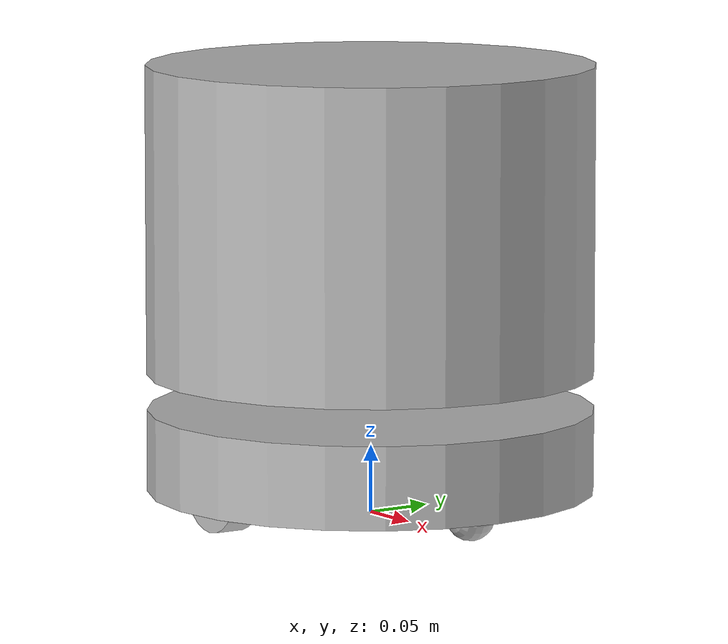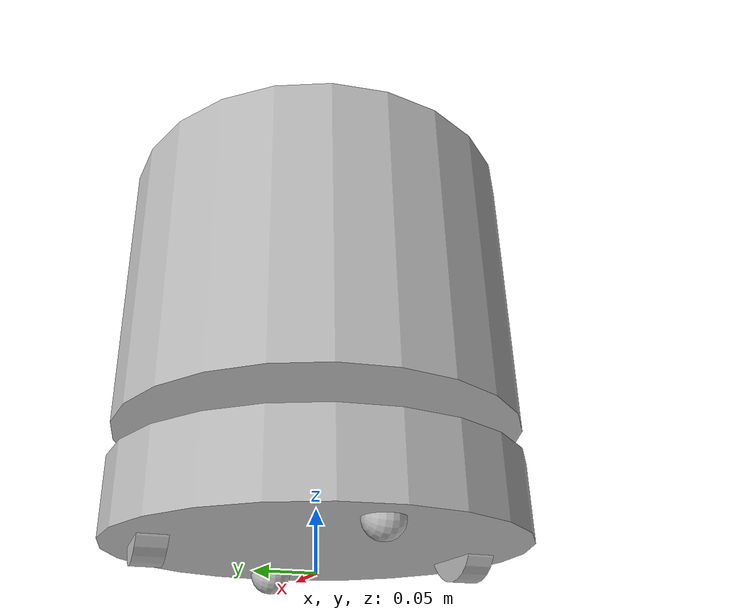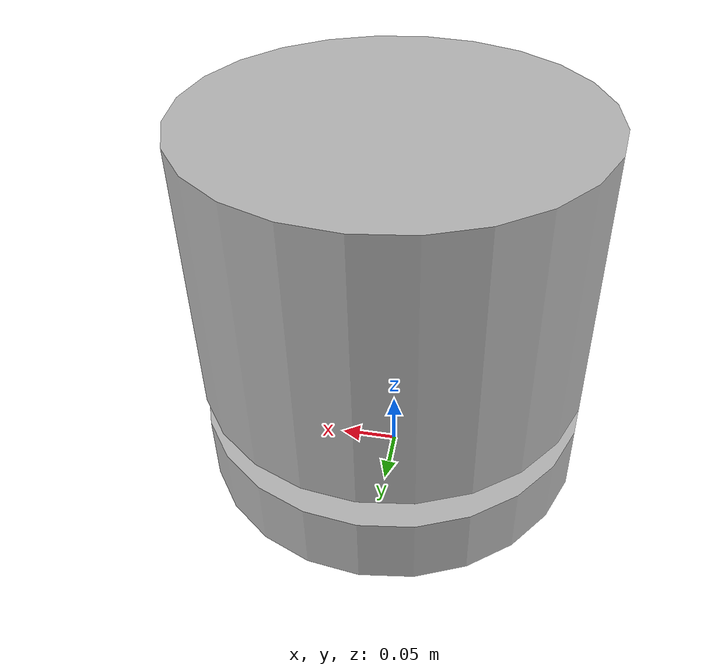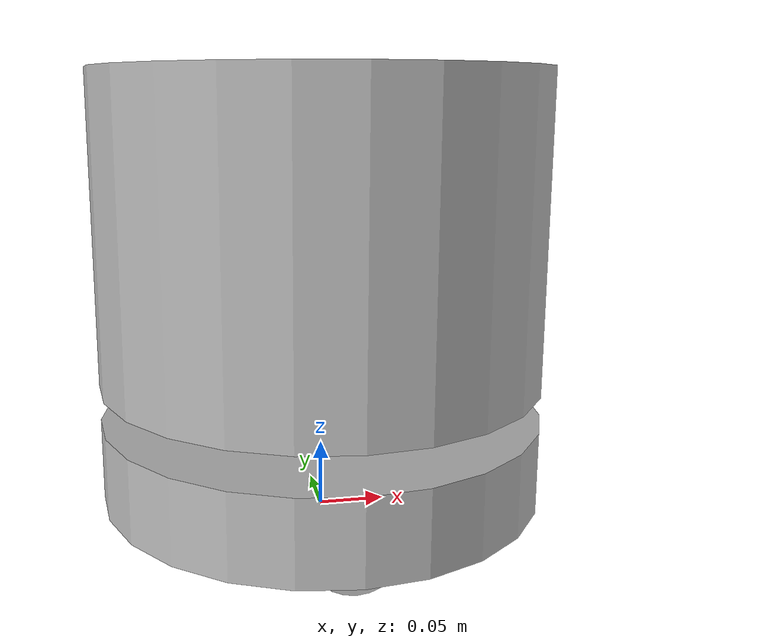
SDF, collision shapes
<?xml version="1.0" ?>
<sdf version="1.4">
  <model name="iRobotCreate">
    <link name="base_link">
      <inertial>
        <pose>0.001453 -0.000453 0.029787 0 0 0</pose>
        <inertia>
          <ixx>0.058640</ixx>
          <ixy>0.000124</ixy>
          <ixz>0.000615</ixz>
          <iyy>0.058786</iyy>
          <iyz>0.000014</iyz>
          <izz>1.532440</izz>
        </inertia>
        <mass>2.234000</mass>
      </inertial>

      <collision name="base_link_collision">
        <pose>0 0 0.047800 0 0 0</pose>
        <geometry>
          <cylinder>
            <radius>0.166495</radius>
            <length>0.061163</length>
          </cylinder>
        </geometry>
      </collision>
      <visual name="base_link_visual">
        <pose>0 0 0.047800 0 0 0</pose>
        <geometry>
          <mesh>
            <uri>model://irobot/meshes/create_body.dae</uri>
          </mesh>
        </geometry>
      </visual>

      <!-->Beer Can<-->
      <collision name='beer_can_collision'>
        <pose>0 0 0.22 0 -0 0</pose>
        <geometry>
          <cylinder>
            <radius>0.166495</radius>
            <length>0.230000</length>
          </cylinder>
        </geometry>
      </collision>
      <visual name='beer_can_visual'>
        <pose>0 0 0.22 0 -0 0</pose>
        <geometry>
          <cylinder>
            <radius>0.166495</radius>
            <length>0.230000</length>
          </cylinder>
        </geometry>
        <material>
          <script>
            <uri>model://beer/materials/scripts</uri>
            <uri>model://beer/materials/textures</uri>
            <name>Beer/Diffuse</name>
          </script>
        </material>
      </visual>

      <collision name="front_wheel_collision">
        <pose>0.130000 0 0.017000 0 1.570700 1.570700</pose>
        <geometry>
          <sphere>
            <radius>0.018000</radius>
          </sphere>
        </geometry>
        <surface>
          <friction>
            <ode>
              <mu>0</mu>
              <mu2>0</mu2>
              <fdir1>0 0 0</fdir1>
              <slip1>0</slip1>
              <slip2>0</slip2>
            </ode>
          </friction>
        </surface>
      </collision>
      <visual name="front_wheel_visual">
        <pose>0.130000 0 0.017000 0 1.570700 1.570700</pose>
        <geometry>
          <sphere>
            <radius>0.009000</radius>
          </sphere>
        </geometry>
      </visual>

      <collision name="rear_wheel_collision">
        <pose>-0.13 0 0.017 0 1.5707 1.5707</pose>
        <geometry>
          <sphere>
            <radius>0.015000</radius>
          </sphere>
        </geometry>
        <surface>
          <friction>
            <ode>
              <mu>0</mu>
              <mu2>0</mu2>
              <fdir1>0 0 0</fdir1>
              <slip1>0</slip1>
              <slip2>0</slip2>
            </ode>
          </friction>
        </surface>
      </collision>
      <visual name="rear_wheel_visual">
        <pose>-0.130000 0 0.017000 0 1.570700 1.570700</pose>
        <geometry>
          <sphere>
            <radius>0.007500</radius>
          </sphere>
        </geometry>
      </visual>

      <!-->hokuyo collision<-->
      <collision name='base_link_collision_hokuyo_laser_link'>
        <pose>0 0 0.28 0 -0 0</pose>
        <geometry>
          <cylinder>
            <length>0.04</length>
            <radius>0.045</radius>
          </cylinder>
        </geometry>
        <surface>
          <contact>
            <ode/>
          </contact>
          <friction>
            <ode/>
          </friction>
        </surface>
      </collision>
      <visual name='base_link_visual_hokuyo_laser_link'>
        <pose>0 0 0.28 0 -0 0</pose>
        <geometry>
          <cylinder>
            <length>0.04</length>
            <radius>0.045</radius>
          </cylinder>
        </geometry>
      </visual>
      <sensor name='head_hokuyo_sensor' type='ray'>
        <visualize>0</visualize>
        <update_rate>40</update_rate>
        <ray>
          <scan>
            <horizontal>
              <samples>360</samples>
              <resolution>1</resolution>
              <min_angle>-3.14159</min_angle>
              <max_angle>3.14159</max_angle>
            </horizontal>
          </scan>
          <range>
            <min>0.166695</min>
            <max>10</max>
            <resolution>0.025</resolution>
          </range>
          <noise>
            <type>gaussian</type>
            <mean>0</mean>
            <stddev>0</stddev>
          </noise>
        </ray>
        <plugin name='gazebo_ros_head_hokuyo_controller' filename='libgazebo_ros_laser.so'>
          <robotNamespace/>
          <topicName>hokuyo_scan</topicName>
          <frameName>hokuyo_laser_link</frameName>
        </plugin>
        <pose>0 0 0.28 0 -0 0</pose>
      </sensor>

      <sensor name='left_front_sensor' type='ray'>
          <visualize>1</visualize>
          <update_rate>40</update_rate>
          <ray>
            <scan>
              <horizontal>
                <samples>3</samples>
                <resolution>1</resolution>
                <min_angle>0.0</min_angle>
                <max_angle>-0.16</max_angle>
              </horizontal>
            </scan>
            <range>
              <min>0.1</min>
              <max>1.25</max>
              <resolution>0.025</resolution>
            </range>
            <noise>
              <type>gaussian</type>
              <mean>0</mean>
              <stddev>0.025</stddev>
            </noise>
          </ray>
          <plugin name='gazebo_ros_left_distance_controller' filename='libgazebo_ros_laser.so'>
            <topicName>left_front_scan</topicName>
            <frameName>irobot_lf_dist</frameName>
          </plugin>
          <pose>0.1 0.1 0.06 0 0 0.3</pose>
      </sensor>

      <sensor name='right_front_sensor' type='ray'>
            <visualize>1</visualize>
            <update_rate>40</update_rate>
            <ray>
              <scan>
                <horizontal>
                  <samples>3</samples>
                  <resolution>1</resolution>
                  <min_angle>0.0</min_angle>
                  <max_angle>0.16</max_angle>
                </horizontal>
              </scan>
              <range>
                <min>0.1</min>
                <max>1.25</max>
                <resolution>0.025</resolution>
              </range>
              <noise>
                <type>gaussian</type>
                <mean>0</mean>
                <stddev>0.025</stddev>
              </noise>
            </ray>
            <plugin name='gazebo_ros_right_distance_controller' filename='libgazebo_ros_laser.so'>
              <topicName>right_front_scan</topicName>
              <frameName>irobot_rf_dist</frameName>
            </plugin>
            <pose>0.1 -0.1 0.06 0 0 -0.3</pose>
        </sensor>

      <sensor name='left_side_sensor' type='ray'>
          <visualize>1</visualize>
          <update_rate>40</update_rate>
          <ray>
            <scan>
              <horizontal>
                <samples>3</samples>
                <resolution>1</resolution>
                <min_angle>0.6</min_angle>
                <max_angle>-0.6</max_angle>
              </horizontal>
            </scan>
            <range>
              <min>0.1</min>
              <max>1.25</max>
              <resolution>0.025</resolution>
            </range>
            <noise>
              <type>gaussian</type>
              <mean>0</mean>
              <stddev>0.025</stddev>
            </noise>
          </ray>
          <plugin name='gazebo_ros_left_distance_controller' filename='libgazebo_ros_laser.so'>
            <topicName>left_side_scan</topicName>
            <frameName>irobot_ls_dist</frameName>
          </plugin>
          <pose>0.0 0.15 0.06 0 0 1.6</pose>
      </sensor>

      <sensor name='right_side_sensor' type='ray'>
            <visualize>1</visualize>
            <update_rate>40</update_rate>
            <ray>
              <scan>
                <horizontal>
                  <samples>3</samples>
                  <resolution>1</resolution>
                  <min_angle>0.6</min_angle>
                  <max_angle>-0.6</max_angle>
                </horizontal>
              </scan>
              <range>
                <min>0.1</min>
                <max>1.25</max>
                <resolution>0.025</resolution>
              </range>
              <noise>
                <type>gaussian</type>
                <mean>0</mean>
                <stddev>0.025</stddev>
              </noise>
            </ray>
            <plugin name='gazebo_ros_right_distance_controller' filename='libgazebo_ros_laser.so'>
              <topicName>right_side_scan</topicName>
              <frameName>irobot_rs_dist</frameName>
            </plugin>
            <pose>0.0 -0.15 0.06 0 0 -1.6</pose>
        </sensor>

          <sensor name='left_cliff_sensor' type='ray'>
              <visualize>1</visualize>
              <update_rate>40</update_rate>
              <ray>
                <scan>
                  <horizontal>
                    <samples>3</samples>
                    <resolution>1</resolution>
                    <min_angle>-0.05</min_angle>
                    <max_angle>0.05</max_angle>
                  </horizontal>
                </scan>
                <range>
                  <min>0.0</min>
                  <max>0.15</max>
                  <resolution>0.025</resolution>
                </range>
                <noise>
                  <type>gaussian</type>
                  <mean>0</mean>
                  <stddev>0</stddev>
                </noise>
              </ray>
              <plugin name='gazebo_ros_left_cliff_controller' filename='libgazebo_ros_laser.so'>
                <topicName>left_cliff</topicName>
                <frameName>irobot_l_cliff</frameName>
              </plugin>
              <pose>0.04 0.15 0.06 0 1.5708 0</pose>
          </sensor>

          <sensor name='right_cliff_sensor' type='ray'>
              <visualize>1</visualize>
              <update_rate>40</update_rate>
              <ray>
                <scan>
                  <horizontal>
                    <samples>3</samples>
                    <resolution>1</resolution>
                    <min_angle>-0.05</min_angle>
                    <max_angle>0.05</max_angle>
                  </horizontal>
                </scan>
                <range>
                  <min>0.0</min>
                  <max>0.15</max>
                  <resolution>0.025</resolution>
                </range>
                <noise>
                  <type>gaussian</type>
                  <mean>0</mean>
                  <stddev>0</stddev>
                </noise>
              </ray>
              <plugin name='gazebo_ros_right_cliff_controller' filename='libgazebo_ros_laser.so'>
                <topicName>right_cliff</topicName>
                <frameName>irobot_r_cliff</frameName>
              </plugin>
              <pose>0.04 -0.15 0.06 0 1.5708 0</pose>
          </sensor>

          <sensor name='left_front_cliff_sensor' type='ray'>
              <visualize>1</visualize>
              <update_rate>40</update_rate>
              <ray>
                <scan>
                  <horizontal>
                    <samples>3</samples>
                    <resolution>1</resolution>
                    <min_angle>-0.05</min_angle>
                    <max_angle>0.05</max_angle>
                  </horizontal>
                </scan>
                <range>
                  <min>0.0</min>
                  <max>0.15</max>
                  <resolution>0.025</resolution>
                </range>
                <noise>
                  <type>gaussian</type>
                  <mean>0</mean>
                  <stddev>0</stddev>
                </noise>
              </ray>
              <plugin name='gazebo_ros_left_front_cliff_controller' filename='libgazebo_ros_laser.so'>
                <topicName>left_front_cliff</topicName>
                <frameName>irobot_lf_cliff</frameName>
              </plugin>
              <pose>0.15 0.03 0.06 0 1.5708 0</pose>
          </sensor>

            <sensor name='right_front_cliff_sensor' type='ray'>
                <visualize>1</visualize>
                <update_rate>40</update_rate>
                <ray>
                  <scan>
                    <horizontal>
                      <samples>3</samples>
                      <resolution>1</resolution>
                      <min_angle>-0.05</min_angle>
                      <max_angle>0.05</max_angle>
                    </horizontal>
                  </scan>
                  <range>
                    <min>0.0</min>
                    <max>0.15</max>
                    <resolution>0.025</resolution>
                  </range>
                  <noise>
                    <type>gaussian</type>
                    <mean>0</mean>
                    <stddev>0</stddev>
                  </noise>
                </ray>
                <plugin name='gazebo_ros_right_front_cliff_controller' filename='libgazebo_ros_laser.so'>
                  <topicName>right_front_cliff</topicName>
                  <frameName>irobot_rf_cliff</frameName>
                </plugin>
                <pose>0.15 -0.03 0.06 0 1.5708 0</pose>
            </sensor>

            <sensor name='bump_sensor' type='ray'>
                <visualize>1</visualize>
                <update_rate>40</update_rate>
                <ray>
                  <scan>
                    <horizontal>
                      <samples>20</samples>
                      <resolution>1</resolution>
                      <min_angle>-1.5</min_angle>
                      <max_angle>1.5</max_angle>
                    </horizontal>
                  </scan>
                  <range>
                    <min>0.168</min>
                    <max>0.2</max>
                    <resolution>0.025</resolution>
                  </range>
                  <noise>
                    <type>gaussian</type>
                    <mean>0</mean>
                    <stddev>0</stddev>
                  </noise>
                </ray>
                <plugin name='gazebo_ros_bump_distance_controller' filename='libgazebo_ros_laser.so'>
                  <topicName>bump_sensor</topicName>
                  <frameName>irobot_bump</frameName>
                </plugin>
                <pose>0 0 0.02 0 0 0</pose>
            </sensor>

    </link>

    <link name="left_wheel">
      <pose>0 0.130000 0.032000 0 0 0</pose>
      <inertial>
        <inertia>
          <ixx>0.001000</ixx>
          <ixy>0</ixy>
          <ixz>0</ixz>
          <iyy>0.001000</iyy>
          <iyz>0</iyz>
          <izz>0.001000</izz>
        </inertia>
        <mass>0.010000</mass>
      </inertial>
      <collision name="collision">
        <pose>0 0 0 0 1.570700 1.570700</pose>
        <geometry>
          <cylinder>
            <radius>0.033000</radius>
            <length>0.023000</length>
          </cylinder>
        </geometry>
        <surface>
          <friction>
            <ode>
              <mu>10</mu>
              <mu2>10</mu2>
              <fdir1>0 0 0</fdir1>
              <slip1>0</slip1>
              <slip2>0</slip2>
            </ode>
          </friction>
        </surface>
      </collision>
      <visual name="visual">
        <pose>0 0 0 0 1.570700 1.570700</pose>
        <geometry>
          <cylinder>
            <radius>0.033000</radius>
            <length>0.023000</length>
          </cylinder>
        </geometry>
      </visual>
    </link>

    <link name="right_wheel">
      <pose>0 -0.130000 0.032000 0 0 0</pose>
      <inertial>
        <inertia>
          <ixx>0.001000</ixx>
          <ixy>0</ixy>
          <ixz>0</ixz>
          <iyy>0.001000</iyy>
          <iyz>0</iyz>
          <izz>0.001000</izz>
        </inertia>
        <mass>0.010000</mass>
      </inertial>
      <collision name="collision">
        <pose>0 0 0 0 1.570700 1.570700</pose>
        <geometry>
          <cylinder>
            <radius>0.033000</radius>
            <length>0.023000</length>
          </cylinder>
        </geometry>
        <surface>
          <friction>
            <ode>
              <mu>10</mu>
              <mu2>10</mu2>
              <fdir1>0 0 0</fdir1>
              <slip1>0</slip1>
              <slip2>0</slip2>
            </ode>
          </friction>
        </surface>
      </collision>
      <visual name="visual">
        <pose>0 0 0 0 1.570700 1.570700</pose>
        <geometry>
          <cylinder>
            <radius>0.033000</radius>
            <length>0.023000</length>
          </cylinder>
        </geometry>
      </visual>
    </link>

    <joint name="left_wheel" type="revolute">
      <parent>base_link</parent>
      <child>left_wheel</child>
      <axis>
        <xyz>0 1 0</xyz>
      </axis>
    </joint>

    <joint name="right_wheel" type="revolute">
      <parent>base_link</parent>
      <child>right_wheel</child>
      <axis>
        <xyz>0 1 0</xyz>
      </axis>
    </joint>

  <plugin name="differential_drive_controller" filename="libgazebo_ros_diff_drive.so">
    <rosDebugLevel>Debug</rosDebugLevel>
    <publishWheelTF>true</publishWheelTF>
    <publishWheelJointState>true</publishWheelJointState>
    <wheelAcceleration>0</wheelAcceleration>
    <wheelTorque>5</wheelTorque>
    <odometrySource>encoder</odometrySource>
    <publishTf>1</publishTf>
    <alwaysOn>true</alwaysOn>
    <updateRate>100.0</updateRate>
    <leftJoint>right_wheel</leftJoint>
    <rightJoint>left_wheel</rightJoint>
    <wheelSeparation>0.26</wheelSeparation>
    <wheelDiameter>0.066</wheelDiameter>
    <torque>20</torque>
    <commandTopic>cmd_vel</commandTopic>
    <odometryTopic>odom</odometryTopic>
    <odometryFrame>odom_original</odometryFrame>
    <robotBaseFrame>none</robotBaseFrame>
  </plugin>

  <plugin name='gazebo_ros_gps' filename='libirobot_gazebo_gps_plugin.so'>
    <updateRate>5.0</updateRate>
    <frameId>gps_antenna</frameId>
    <topicName>gps_data</topicName>
    <velocityTopicName>gps_velocity</velocityTopicName>
    <offset>0 0 0</offset>
    <drift>0.001 0.001 0.001</drift>
    <gaussianNoise>0.075 0.075 0.075</gaussianNoise>
    <velocityDrift>0 0 0</velocityDrift>
    <velocityGaussianNoise>0.01 0.01 0.01</velocityGaussianNoise>
    <bodyName>base_link</bodyName>
    <xyzOffset>-0.0 0.0 -0.0</xyzOffset>
    <rpyOffset>0 -0 0</rpyOffset>
  </plugin>

  <plugin name="irobot_imu_plugin" filename="libgazebo_ros_imu.so">
      <alwaysOn>true</alwaysOn>
      <updateRate>100.0</updateRate>
      <bodyName>base_link</bodyName>
      <topicName>imu_data</topicName>
      <serviceName>imu_service</serviceName>
      <gaussianNoise>0.1</gaussianNoise>
  </plugin>

  </model>
</sdf>
